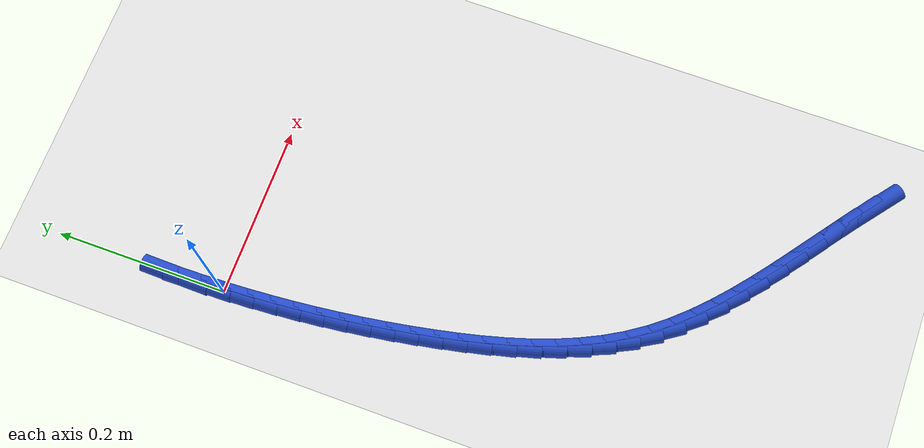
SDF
<sdf version="1.6">
 <world name="default">
  <model name="ground_plane">
   <static>1</static>
   <link name="link">
    <collision name="collision">
     <geometry><plane><normal>0 0 1</normal><size>100 100</size></plane></geometry>
     <surface><friction><ode><mu>100</mu><mu2>50</mu2></ode></friction></surface>
    </collision>
    <visual name="visual">
     <cast_shadows>0</cast_shadows>
     <geometry><plane><normal>0 0 1</normal><size>100 100</size></plane></geometry>
     <material>
      <script><uri>file://media/materials/scripts/gazebo.material</uri><name>Gazebo/WhiteGlow</name></script>
     </material>
    </visual>
   </link>
  </model>
  <model name="line">
   <link name="link_0">
    <pose>1.5178830414797062e-18 -2.0816681711721685e-17 0.01 0 1.57 -1.5357499179945358</pose>
    <collision name="collision">
     <geometry><cylinder><radius>0.01</radius><length>0.08</length></cylinder></geometry>
    </collision>
    <visual name="visual">
     <material>
      <script><name>Gazebo/Blue</name><uri>file://media/materials/scripts/gazebo.material</uri></script>
     </material>
     <geometry><cylinder><radius>0.01</radius><length>0.08</length></cylinder></geometry>
    </visual>
   </link>
   <link name="link_1">
    <pose>-0.0009531655299289681 0.027186102327906716 0.01 0 1.57 -1.557637908118741</pose>
    <collision name="collision">
     <geometry><cylinder><radius>0.01</radius><length>0.08</length></cylinder></geometry>
    </collision>
    <visual name="visual">
     <material>
      <script><name>Gazebo/Blue</name><uri>file://media/materials/scripts/gazebo.material</uri></script>
     </material>
     <geometry><cylinder><radius>0.01</radius><length>0.08</length></cylinder></geometry>
    </visual>
   </link>
   <link name="link_2">
    <pose>-0.0013129631149767533 0.05452805184836838 0.01 0 1.57 1.5550119378873457</pose>
    <collision name="collision">
     <geometry><cylinder><radius>0.01</radius><length>0.08</length></cylinder></geometry>
    </collision>
    <visual name="visual">
     <material>
      <script><name>Gazebo/Blue</name><uri>file://media/materials/scripts/gazebo.material</uri></script>
     </material>
     <geometry><cylinder><radius>0.01</radius><length>0.08</length></cylinder></geometry>
    </visual>
   </link>
   <link name="link_241">
    <pose>0.3367208260677925 -0.650036725350585 0.01 0 1.57 -0.6625767036758484</pose>
    <collision name="collision">
     <geometry><cylinder><radius>0.01</radius><length>0.08</length></cylinder></geometry>
    </collision>
    <visual name="visual">
     <material>
      <script><name>Gazebo/Blue</name><uri>file://media/materials/scripts/gazebo.material</uri></script>
     </material>
     <geometry><cylinder><radius>0.01</radius><length>0.08</length></cylinder></geometry>
    </visual>
   </link>
   <link name="link_242">
    <pose>0.31538174944901926 -0.6333870826500365 0.01 0 1.57 -0.6452496921197615</pose>
    <collision name="collision">
     <geometry><cylinder><radius>0.01</radius><length>0.08</length></cylinder></geometry>
    </collision>
    <visual name="visual">
     <material>
      <script><name>Gazebo/Blue</name><uri>file://media/materials/scripts/gazebo.material</uri></script>
     </material>
     <geometry><cylinder><radius>0.01</radius><length>0.08</length></cylinder></geometry>
    </visual>
   </link>
   <link name="link_243">
    <pose>0.2936659196370823 -0.6170408011661659 0.01 0 1.57 -0.6367304199622242</pose>
    <collision name="collision">
     <geometry><cylinder><radius>0.01</radius><length>0.08</length></cylinder></geometry>
    </collision>
    <visual name="visual">
     <material>
      <script><name>Gazebo/Blue</name><uri>file://media/materials/scripts/gazebo.material</uri></script>
     </material>
     <geometry><cylinder><radius>0.01</radius><length>0.08</length></cylinder></geometry>
    </visual>
   </link>
   <link name="link_244">
    <pose>0.271769737323118 -0.6008491417055033 0.01 0 1.57 -0.6369072161200567</pose>
    <collision name="collision">
     <geometry><cylinder><radius>0.01</radius><length>0.08</length></cylinder></geometry>
    </collision>
    <visual name="visual">
     <material>
      <script><name>Gazebo/Blue</name><uri>file://media/materials/scripts/gazebo.material</uri></script>
     </material>
     <geometry><cylinder><radius>0.01</radius><length>0.08</length></cylinder></geometry>
    </visual>
   </link>
   <link name="link_245">
    <pose>0.24988960319826578 -0.5846633650745802 0.01 0 1.57 -0.645797168149708</pose>
    <collision name="collision">
     <geometry><cylinder><radius>0.01</radius><length>0.08</length></cylinder></geometry>
    </collision>
    <visual name="visual">
     <material>
      <script><name>Gazebo/Blue</name><uri>file://media/materials/scripts/gazebo.material</uri></script>
     </material>
     <geometry><cylinder><radius>0.01</radius><length>0.08</length></cylinder></geometry>
    </visual>
   </link>
   <link name="link_246">
    <pose>0.2282219179536628 -0.5683347320799272 0.01 0 1.57 -0.663546509570356</pose>
    <collision name="collision">
     <geometry><cylinder><radius>0.01</radius><length>0.08</length></cylinder></geometry>
    </collision>
    <visual name="visual">
     <material>
      <script><name>Gazebo/Blue</name><uri>file://media/materials/scripts/gazebo.material</uri></script>
     </material>
     <geometry><cylinder><radius>0.01</radius><length>0.08</length></cylinder></geometry>
    </visual>
   </link>
   <link name="link_247">
    <pose>0.20696308228044635 -0.5517145035280744 0.01 0 1.57 -0.6904149663449566</pose>
    <collision name="collision">
     <geometry><cylinder><radius>0.01</radius><length>0.08</length></cylinder></geometry>
    </collision>
    <visual name="visual">
     <material>
      <script><name>Gazebo/Blue</name><uri>file://media/materials/scripts/gazebo.material</uri></script>
     </material>
     <geometry><cylinder><radius>0.01</radius><length>0.08</length></cylinder></geometry>
    </visual>
   </link>
   <link name="link_248">
    <pose>0.18630949686975568 -0.5346539402255539 0.01 0 1.57 -0.7267400681970068</pose>
    <collision name="collision">
     <geometry><cylinder><radius>0.01</radius><length>0.08</length></cylinder></geometry>
    </collision>
    <visual name="visual">
     <material>
      <script><name>Gazebo/Blue</name><uri>file://media/materials/scripts/gazebo.material</uri></script>
     </material>
     <geometry><cylinder><radius>0.01</radius><length>0.08</length></cylinder></geometry>
    </visual>
   </link>
   <link name="link_249">
    <pose>0.16645756241272733 -0.5170043029788952 0.01 0 1.57 -0.7728742282642156</pose>
    <collision name="collision">
     <geometry><cylinder><radius>0.01</radius><length>0.08</length></cylinder></geometry>
    </collision>
    <visual name="visual">
     <material>
      <script><name>Gazebo/Blue</name><uri>file://media/materials/scripts/gazebo.material</uri></script>
     </material>
     <geometry><cylinder><radius>0.01</radius><length>0.08</length></cylinder></geometry>
    </visual>
   </link>
   <link name="link_250">
    <pose>0.14760367960050066 -0.49861685259463057 0.01 0 1.57 -0.8290860840565993</pose>
    <collision name="collision">
     <geometry><cylinder><radius>0.01</radius><length>0.08</length></cylinder></geometry>
    </collision>
    <visual name="visual">
     <material>
      <script><name>Gazebo/Blue</name><uri>file://media/materials/scripts/gazebo.material</uri></script>
     </material>
     <geometry><cylinder><radius>0.01</radius><length>0.08</length></cylinder></geometry>
    </visual>
   </link>
   <link name="link_251">
    <pose>0.1299442491242123 -0.47934284987928955 0.01 0 1.57 -0.8954209482681535</pose>
    <collision name="collision">
     <geometry><cylinder><radius>0.01</radius><length>0.08</length></cylinder></geometry>
    </collision>
    <visual name="visual">
     <material>
      <script><name>Gazebo/Blue</name><uri>file://media/materials/scripts/gazebo.material</uri></script>
     </material>
     <geometry><cylinder><radius>0.01</radius><length>0.08</length></cylinder></geometry>
    </visual>
   </link>
   <link name="link_252">
    <pose>0.1136756716750012 -0.45903355563940396 0.01 0 1.57 -0.9711322600517174</pose>
    <collision name="collision">
     <geometry><cylinder><radius>0.01</radius><length>0.08</length></cylinder></geometry>
    </collision>
    <visual name="visual">
     <material>
      <script><name>Gazebo/Blue</name><uri>file://media/materials/scripts/gazebo.material</uri></script>
     </material>
     <geometry><cylinder><radius>0.01</radius><length>0.08</length></cylinder></geometry>
    </visual>
   </link>
   <link name="link_253">
    <pose>0.09898675327247285 -0.4375473382203592 0.01 0 1.57 -1.0470855061293098</pose>
    <collision name="collision">
     <geometry><cylinder><radius>0.01</radius><length>0.08</length></cylinder></geometry>
    </collision>
    <visual name="visual">
     <material>
      <script><name>Gazebo/Blue</name><uri>file://media/materials/scripts/gazebo.material</uri></script>
     </material>
     <geometry><cylinder><radius>0.01</radius><length>0.08</length></cylinder></geometry>
    </visual>
   </link>
   <link name="link_254">
    <pose>0.08590446809259612 -0.4148940176941834 0.01 0 1.57 -1.1149230075462178</pose>
    <collision name="collision">
     <geometry><cylinder><radius>0.01</radius><length>0.08</length></cylinder></geometry>
    </collision>
    <visual name="visual">
     <material>
      <script><name>Gazebo/Blue</name><uri>file://media/materials/scripts/gazebo.material</uri></script>
     </material>
     <geometry><cylinder><radius>0.01</radius><length>0.08</length></cylinder></geometry>
    </visual>
   </link>
   <link name="link_255">
    <pose>0.0743007887024868 -0.3912284737254078 0.01 0 1.57 -1.1744809033015464</pose>
    <collision name="collision">
     <geometry><cylinder><radius>0.01</radius><length>0.08</length></cylinder></geometry>
    </collision>
    <visual name="visual">
     <material>
      <script><name>Gazebo/Blue</name><uri>file://media/materials/scripts/gazebo.material</uri></script>
     </material>
     <geometry><cylinder><radius>0.01</radius><length>0.08</length></cylinder></geometry>
    </visual>
   </link>
   <link name="link_256">
    <pose>0.06404145984104474 -0.36671141434531784 0.01 0 1.57 -1.2261400225710293</pose>
    <collision name="collision">
     <geometry><cylinder><radius>0.01</radius><length>0.08</length></cylinder></geometry>
    </collision>
    <visual name="visual">
     <material>
      <script><name>Gazebo/Blue</name><uri>file://media/materials/scripts/gazebo.material</uri></script>
     </material>
     <geometry><cylinder><radius>0.01</radius><length>0.08</length></cylinder></geometry>
    </visual>
   </link>
   <link name="link_257">
    <pose>0.054992226247168645 -0.3415035475851968 0.01 0 1.57 -1.2703812260538367</pose>
    <collision name="collision">
     <geometry><cylinder><radius>0.01</radius><length>0.08</length></cylinder></geometry>
    </collision>
    <visual name="visual">
     <material>
      <script><name>Gazebo/Blue</name><uri>file://media/materials/scripts/gazebo.material</uri></script>
     </material>
     <geometry><cylinder><radius>0.01</radius><length>0.08</length></cylinder></geometry>
    </visual>
   </link>
   <link name="link_258">
    <pose>0.047018832659757474 -0.31576558147632766 0.01 0 1.57 -1.3076978499754333</pose>
    <collision name="collision">
     <geometry><cylinder><radius>0.01</radius><length>0.08</length></cylinder></geometry>
    </collision>
    <visual name="visual">
     <material>
      <script><name>Gazebo/Blue</name><uri>file://media/materials/scripts/gazebo.material</uri></script>
     </material>
     <geometry><cylinder><radius>0.01</radius><length>0.08</length></cylinder></geometry>
    </visual>
   </link>
   <link name="link_259">
    <pose>0.03998702381771081 -0.2896582240499961 0.01 0 1.57 -1.3385368678728904</pose>
    <collision name="collision">
     <geometry><cylinder><radius>0.01</radius><length>0.08</length></cylinder></geometry>
    </collision>
    <visual name="visual">
     <material>
      <script><name>Gazebo/Blue</name><uri>file://media/materials/scripts/gazebo.material</uri></script>
     </material>
     <geometry><cylinder><radius>0.01</radius><length>0.08</length></cylinder></geometry>
    </visual>
   </link>
   <link name="link_260">
    <pose>0.03376254445992737 -0.26334218333748416 0.01 0 1.57 -1.3632606569962764</pose>
    <collision name="collision">
     <geometry><cylinder><radius>0.01</radius><length>0.08</length></cylinder></geometry>
    </collision>
    <visual name="visual">
     <material>
      <script><name>Gazebo/Blue</name><uri>file://media/materials/scripts/gazebo.material</uri></script>
     </material>
     <geometry><cylinder><radius>0.01</radius><length>0.08</length></cylinder></geometry>
    </visual>
   </link>
   <link name="link_261">
    <pose>0.028211139325306642 -0.23697816737007757 0.01 0 1.57 -1.3825552709523097</pose>
    <collision name="collision">
     <geometry><cylinder><radius>0.01</radius><length>0.08</length></cylinder></geometry>
    </collision>
    <visual name="visual">
     <material>
      <script><name>Gazebo/Blue</name><uri>file://media/materials/scripts/gazebo.material</uri></script>
     </material>
     <geometry><cylinder><radius>0.01</radius><length>0.08</length></cylinder></geometry>
    </visual>
   </link>
   <link name="link_262">
    <pose>0.023207388724635385 -0.2107112705853534 0.01 0 1.57 -1.4001766561971636</pose>
    <collision name="collision">
     <geometry><cylinder><radius>0.01</radius><length>0.08</length></cylinder></geometry>
    </collision>
    <visual name="visual">
     <material>
      <script><name>Gazebo/Blue</name><uri>file://media/materials/scripts/gazebo.material</uri></script>
     </material>
     <geometry><cylinder><radius>0.01</radius><length>0.08</length></cylinder></geometry>
    </visual>
   </link>
   <link name="link_263">
    <pose>0.01870069099384786 -0.18455437433256203 0.01 0 1.57 -1.4178805857370946</pose>
    <collision name="collision">
     <geometry><cylinder><radius>0.01</radius><length>0.08</length></cylinder></geometry>
    </collision>
    <visual name="visual">
     <material>
      <script><name>Gazebo/Blue</name><uri>file://media/materials/scripts/gazebo.material</uri></script>
     </material>
     <geometry><cylinder><radius>0.01</radius><length>0.08</length></cylinder></geometry>
    </visual>
   </link>
   <link name="link_264">
    <pose>0.014678101858780608 -0.1584538145020493 0.01 0 1.57 -1.4355595281503426</pose>
    <collision name="collision">
     <geometry><cylinder><radius>0.01</radius><length>0.08</length></cylinder></geometry>
    </collision>
    <visual name="visual">
     <material>
      <script><name>Gazebo/Blue</name><uri>file://media/materials/scripts/gazebo.material</uri></script>
     </material>
     <geometry><cylinder><radius>0.01</radius><length>0.08</length></cylinder></geometry>
    </visual>
   </link>
   <link name="link_265">
    <pose>0.011126963327317684 -0.13235542108690881 0.01 0 1.57 -1.4530905956414804</pose>
    <collision name="collision">
     <geometry><cylinder><radius>0.01</radius><length>0.08</length></cylinder></geometry>
    </collision>
    <visual name="visual">
     <material>
      <script><name>Gazebo/Blue</name><uri>file://media/materials/scripts/gazebo.material</uri></script>
     </material>
     <geometry><cylinder><radius>0.01</radius><length>0.08</length></cylinder></geometry>
    </visual>
   </link>
   <link name="link_266">
    <pose>0.00803461740734271 -0.10620502408023115 0.01 0 1.57 -1.4703526625251964</pose>
    <collision name="collision">
     <geometry><cylinder><radius>0.01</radius><length>0.08</length></cylinder></geometry>
    </collision>
    <visual name="visual">
     <material>
      <script><name>Gazebo/Blue</name><uri>file://media/materials/scripts/gazebo.material</uri></script>
     </material>
     <geometry><cylinder><radius>0.01</radius><length>0.08</length></cylinder></geometry>
    </visual>
   </link>
   <link name="link_267">
    <pose>0.005388406106739696 -0.07994845347510993 0.01 0 1.57 -1.4872293581420348</pose>
    <collision name="collision">
     <geometry><cylinder><radius>0.01</radius><length>0.08</length></cylinder></geometry>
    </collision>
    <visual name="visual">
     <material>
      <script><name>Gazebo/Blue</name><uri>file://media/materials/scripts/gazebo.material</uri></script>
     </material>
     <geometry><cylinder><radius>0.01</radius><length>0.08</length></cylinder></geometry>
    </visual>
   </link>
   <link name="link_268">
    <pose>0.0031756714333923608 -0.0535315392646364 0.01 0 1.57 -1.5036118278134976</pose>
    <collision name="collision">
     <geometry><cylinder><radius>0.01</radius><length>0.08</length></cylinder></geometry>
    </collision>
    <visual name="visual">
     <material>
      <script><name>Gazebo/Blue</name><uri>file://media/materials/scripts/gazebo.material</uri></script>
     </material>
     <geometry><cylinder><radius>0.01</radius><length>0.08</length></cylinder></geometry>
    </visual>
   </link>
   <link name="link_269">
    <pose>0.0013837553951844858 -0.02690011144190187 0.01 0 1.57 -1.5194011196778978</pose>
    <collision name="collision">
     <geometry><cylinder><radius>0.01</radius><length>0.08</length></cylinder></geometry>
    </collision>
    <visual name="visual">
     <material>
      <script><name>Gazebo/Blue</name><uri>file://media/materials/scripts/gazebo.material</uri></script>
     </material>
     <geometry><cylinder><radius>0.01</radius><length>0.08</length></cylinder></geometry>
    </visual>
   </link>
   <link name="link_270">
    <pose>3.279711571768651e-18 -2.0816681711721685e-17 0.01 0 1.57 -1.5345100896944677</pose>
    <collision name="collision">
     <geometry><cylinder><radius>0.01</radius><length>0.08</length></cylinder></geometry>
    </collision>
    <visual name="visual">
     <material>
      <script><name>Gazebo/Blue</name><uri>file://media/materials/scripts/gazebo.material</uri></script>
     </material>
     <geometry><cylinder><radius>0.01</radius><length>0.08</length></cylinder></geometry>
    </visual>
   </link>
   <link name="link_271">
    <pose>-0.000988252744277345 0.027222965067978694 0.01 0 1.57 -1.5488647592455018</pose>
    <collision name="collision">
     <geometry><cylinder><radius>0.01</radius><length>0.08</length></cylinder></geometry>
    </collision>
    <visual name="visual">
     <material>
      <script><name>Gazebo/Blue</name><uri>file://media/materials/scripts/gazebo.material</uri></script>
     </material>
     <geometry><cylinder><radius>0.01</radius><length>0.08</length></cylinder></geometry>
    </visual>
   </link>
  </model>
 </world>
</sdf>
